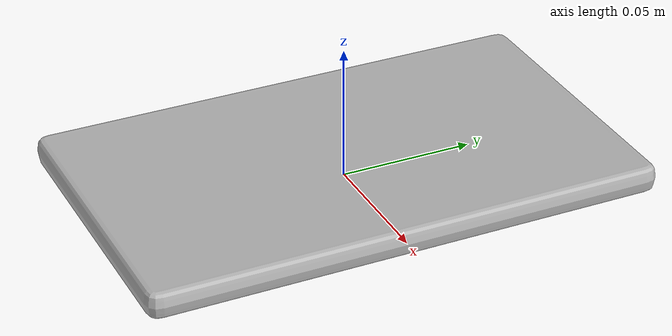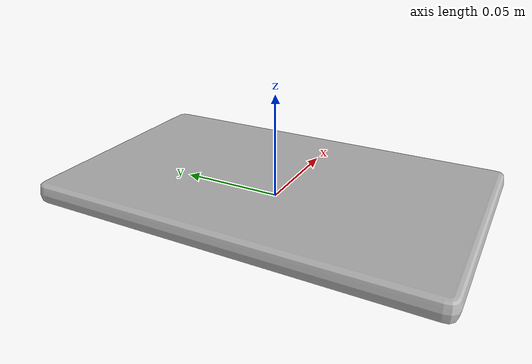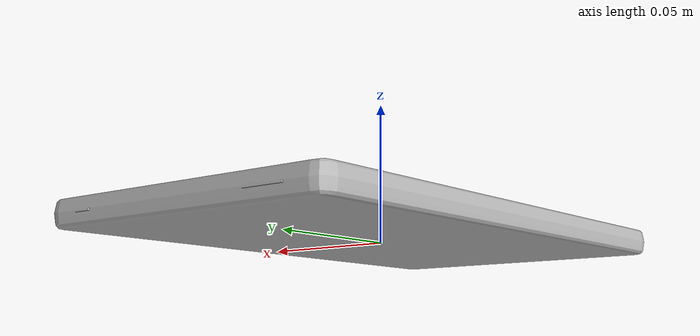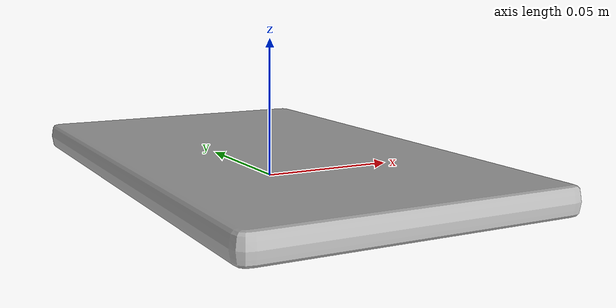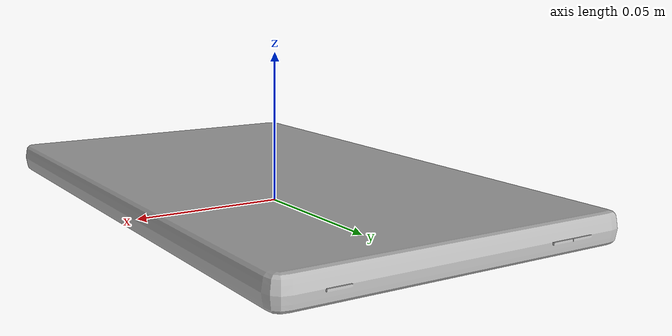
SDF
<?xml version="1.0"?>
<sdf version="1.6">
  <model name="aws_robomaker_residential_Tablet_01">
    <link name="link_Tablet_01">
      <inertial>
        <mass>0.5</mass>
        <inertia>
          <ixx>0.035652</ixx>
          <ixy>0</ixy>
          <ixz>0</ixz>
          <iyy>0.01</iyy>
          <iyz>0</iyz>
          <izz>0.04120698</izz>
        </inertia>
      </inertial>
      <collision name="collision">
        <geometry>
          <mesh>
            <uri>model://aws_robomaker_residential_Tablet_01/meshes/aws_Tablet_01_collision.DAE</uri>
            <scale>1 1 1</scale>
          </mesh>
        </geometry>
      </collision>
      <visual name="visual">
        <geometry>
          <mesh>
            <uri>model://aws_robomaker_residential_Tablet_01/meshes/aws_Tablet_01_visual.DAE</uri>
          </mesh>
        </geometry>
        <meta>
          <layer>2</layer>
        </meta>
      </visual>
    </link>
    <static>1</static>
  </model>
</sdf>
